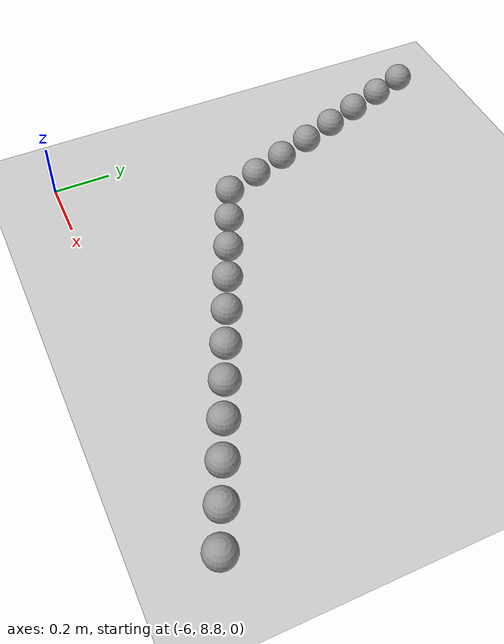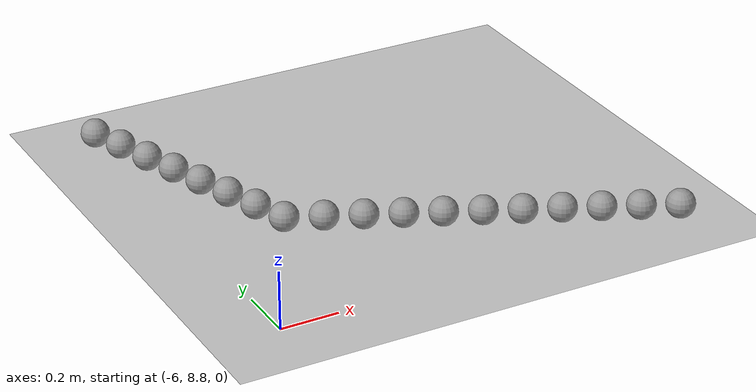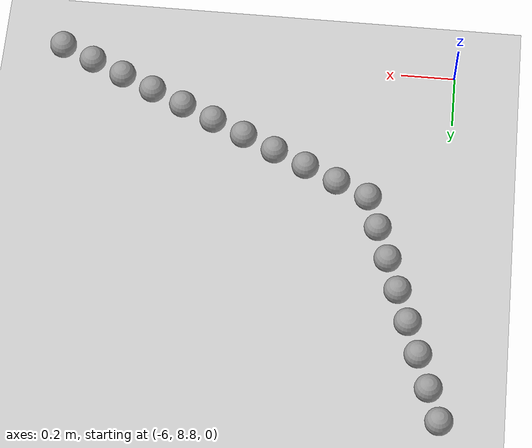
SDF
<sdf version="1.6">
 <world name="default">
  <model name="ground_plane">
   <static>1</static>
   <link name="link">
    <collision name="collision">
     <geometry><plane><normal>0 0 1</normal><size>100 100</size></plane></geometry>
     <surface><friction><ode><mu>100</mu><mu2>50</mu2></ode></friction></surface>
    </collision>
    <visual name="visual">
     <cast_shadows>0</cast_shadows>
     <geometry><plane><normal>0 0 1</normal><size>100 100</size></plane></geometry>
     <material>
      <script><uri>file://media/materials/scripts/gazebo.material</uri><name>Gazebo/Grey</name></script>
     </material>
    </visual>
   </link>
  </model>
  <model name="unit_sphere_0_60">
   <pose>-4.530000 8.810000 0.050000 0 -0 0</pose>
   <link name="link">
    <inertial>
     <mass>1</mass>
     <inertia><ixx>0.1</ixx><ixy>0</ixy><ixz>0</ixz><iyy>0.1</iyy><iyz>0</iyz><izz>0.1</izz></inertia>
    </inertial>
    <collision name="collision"><geometry><sphere><radius>0.050000</radius></sphere></geometry></collision>
    <visual name="visual">
     <geometry><sphere><radius>0.050000</radius></sphere></geometry>
     <material>
      <script><name>Gazebo/Grey</name><uri>file://media/materials/scripts/gazebo.material</uri></script>
     </material>
    </visual>
   </link>
  </model>
  <model name="unit_sphere_0_61">
   <pose>-4.648000 8.864000 0.050000 0 -0 0</pose>
   <link name="link">
    <inertial>
     <mass>1</mass>
     <inertia><ixx>0.1</ixx><ixy>0</ixy><ixz>0</ixz><iyy>0.1</iyy><iyz>0</iyz><izz>0.1</izz></inertia>
    </inertial>
    <collision name="collision"><geometry><sphere><radius>0.050000</radius></sphere></geometry></collision>
    <visual name="visual">
     <geometry><sphere><radius>0.050000</radius></sphere></geometry>
     <material>
      <script><name>Gazebo/Grey</name><uri>file://media/materials/scripts/gazebo.material</uri></script>
     </material>
    </visual>
   </link>
  </model>
  <model name="unit_sphere_0_62">
   <pose>-4.766000 8.918000 0.050000 0 -0 0</pose>
   <link name="link">
    <inertial>
     <mass>1</mass>
     <inertia><ixx>0.1</ixx><ixy>0</ixy><ixz>0</ixz><iyy>0.1</iyy><iyz>0</iyz><izz>0.1</izz></inertia>
    </inertial>
    <collision name="collision"><geometry><sphere><radius>0.050000</radius></sphere></geometry></collision>
    <visual name="visual">
     <geometry><sphere><radius>0.050000</radius></sphere></geometry>
     <material>
      <script><name>Gazebo/Grey</name><uri>file://media/materials/scripts/gazebo.material</uri></script>
     </material>
    </visual>
   </link>
  </model>
  <model name="unit_sphere_0_63">
   <pose>-4.884000 8.972000 0.050000 0 -0 0</pose>
   <link name="link">
    <inertial>
     <mass>1</mass>
     <inertia><ixx>0.1</ixx><ixy>0</ixy><ixz>0</ixz><iyy>0.1</iyy><iyz>0</iyz><izz>0.1</izz></inertia>
    </inertial>
    <collision name="collision"><geometry><sphere><radius>0.050000</radius></sphere></geometry></collision>
    <visual name="visual">
     <geometry><sphere><radius>0.050000</radius></sphere></geometry>
     <material>
      <script><name>Gazebo/Grey</name><uri>file://media/materials/scripts/gazebo.material</uri></script>
     </material>
    </visual>
   </link>
  </model>
  <model name="unit_sphere_0_64">
   <pose>-5.002000 9.026000 0.050000 0 -0 0</pose>
   <link name="link">
    <inertial>
     <mass>1</mass>
     <inertia><ixx>0.1</ixx><ixy>0</ixy><ixz>0</ixz><iyy>0.1</iyy><iyz>0</iyz><izz>0.1</izz></inertia>
    </inertial>
    <collision name="collision"><geometry><sphere><radius>0.050000</radius></sphere></geometry></collision>
    <visual name="visual">
     <geometry><sphere><radius>0.050000</radius></sphere></geometry>
     <material>
      <script><name>Gazebo/Grey</name><uri>file://media/materials/scripts/gazebo.material</uri></script>
     </material>
    </visual>
   </link>
  </model>
  <model name="unit_sphere_0_65">
   <pose>-5.120000 9.080000 0.050000 0 -0 0</pose>
   <link name="link">
    <inertial>
     <mass>1</mass>
     <inertia><ixx>0.1</ixx><ixy>0</ixy><ixz>0</ixz><iyy>0.1</iyy><iyz>0</iyz><izz>0.1</izz></inertia>
    </inertial>
    <collision name="collision"><geometry><sphere><radius>0.050000</radius></sphere></geometry></collision>
    <visual name="visual">
     <geometry><sphere><radius>0.050000</radius></sphere></geometry>
     <material>
      <script><name>Gazebo/Grey</name><uri>file://media/materials/scripts/gazebo.material</uri></script>
     </material>
    </visual>
   </link>
  </model>
  <model name="unit_sphere_0_66">
   <pose>-5.238000 9.134000 0.050000 0 -0 0</pose>
   <link name="link">
    <inertial>
     <mass>1</mass>
     <inertia><ixx>0.1</ixx><ixy>0</ixy><ixz>0</ixz><iyy>0.1</iyy><iyz>0</iyz><izz>0.1</izz></inertia>
    </inertial>
    <collision name="collision"><geometry><sphere><radius>0.050000</radius></sphere></geometry></collision>
    <visual name="visual">
     <geometry><sphere><radius>0.050000</radius></sphere></geometry>
     <material>
      <script><name>Gazebo/Grey</name><uri>file://media/materials/scripts/gazebo.material</uri></script>
     </material>
    </visual>
   </link>
  </model>
  <model name="unit_sphere_0_67">
   <pose>-5.356000 9.188000 0.050000 0 -0 0</pose>
   <link name="link">
    <inertial>
     <mass>1</mass>
     <inertia><ixx>0.1</ixx><ixy>0</ixy><ixz>0</ixz><iyy>0.1</iyy><iyz>0</iyz><izz>0.1</izz></inertia>
    </inertial>
    <collision name="collision"><geometry><sphere><radius>0.050000</radius></sphere></geometry></collision>
    <visual name="visual">
     <geometry><sphere><radius>0.050000</radius></sphere></geometry>
     <material>
      <script><name>Gazebo/Grey</name><uri>file://media/materials/scripts/gazebo.material</uri></script>
     </material>
    </visual>
   </link>
  </model>
  <model name="unit_sphere_0_68">
   <pose>-5.474000 9.242000 0.050000 0 -0 0</pose>
   <link name="link">
    <inertial>
     <mass>1</mass>
     <inertia><ixx>0.1</ixx><ixy>0</ixy><ixz>0</ixz><iyy>0.1</iyy><iyz>0</iyz><izz>0.1</izz></inertia>
    </inertial>
    <collision name="collision"><geometry><sphere><radius>0.050000</radius></sphere></geometry></collision>
    <visual name="visual">
     <geometry><sphere><radius>0.050000</radius></sphere></geometry>
     <material>
      <script><name>Gazebo/Grey</name><uri>file://media/materials/scripts/gazebo.material</uri></script>
     </material>
    </visual>
   </link>
  </model>
  <model name="unit_sphere_0_69">
   <pose>-5.592000 9.296000 0.050000 0 -0 0</pose>
   <link name="link">
    <inertial>
     <mass>1</mass>
     <inertia><ixx>0.1</ixx><ixy>0</ixy><ixz>0</ixz><iyy>0.1</iyy><iyz>0</iyz><izz>0.1</izz></inertia>
    </inertial>
    <collision name="collision"><geometry><sphere><radius>0.050000</radius></sphere></geometry></collision>
    <visual name="visual">
     <geometry><sphere><radius>0.050000</radius></sphere></geometry>
     <material>
      <script><name>Gazebo/Grey</name><uri>file://media/materials/scripts/gazebo.material</uri></script>
     </material>
    </visual>
   </link>
  </model>
  <model name="unit_sphere_0_70">
   <pose>-5.710000 9.350000 0.050000 0 -0 0</pose>
   <link name="link">
    <inertial>
     <mass>1</mass>
     <inertia><ixx>0.1</ixx><ixy>0</ixy><ixz>0</ixz><iyy>0.1</iyy><iyz>0</iyz><izz>0.1</izz></inertia>
    </inertial>
    <collision name="collision"><geometry><sphere><radius>0.050000</radius></sphere></geometry></collision>
    <visual name="visual">
     <geometry><sphere><radius>0.050000</radius></sphere></geometry>
     <material>
      <script><name>Gazebo/Grey</name><uri>file://media/materials/scripts/gazebo.material</uri></script>
     </material>
    </visual>
   </link>
  </model>
  <model name="unit_sphere_0_71">
   <pose>-5.753000 9.471000 0.050000 0 -0 0</pose>
   <link name="link">
    <inertial>
     <mass>1</mass>
     <inertia><ixx>0.1</ixx><ixy>0</ixy><ixz>0</ixz><iyy>0.1</iyy><iyz>0</iyz><izz>0.1</izz></inertia>
    </inertial>
    <collision name="collision"><geometry><sphere><radius>0.050000</radius></sphere></geometry></collision>
    <visual name="visual">
     <geometry><sphere><radius>0.050000</radius></sphere></geometry>
     <material>
      <script><name>Gazebo/Grey</name><uri>file://media/materials/scripts/gazebo.material</uri></script>
     </material>
    </visual>
   </link>
  </model>
  <model name="unit_sphere_0_72">
   <pose>-5.796000 9.592000 0.050000 0 -0 0</pose>
   <link name="link">
    <inertial>
     <mass>1</mass>
     <inertia><ixx>0.1</ixx><ixy>0</ixy><ixz>0</ixz><iyy>0.1</iyy><iyz>0</iyz><izz>0.1</izz></inertia>
    </inertial>
    <collision name="collision"><geometry><sphere><radius>0.050000</radius></sphere></geometry></collision>
    <visual name="visual">
     <geometry><sphere><radius>0.050000</radius></sphere></geometry>
     <material>
      <script><name>Gazebo/Grey</name><uri>file://media/materials/scripts/gazebo.material</uri></script>
     </material>
    </visual>
   </link>
  </model>
  <model name="unit_sphere_0_73">
   <pose>-5.839000 9.713000 0.050000 0 -0 0</pose>
   <link name="link">
    <inertial>
     <mass>1</mass>
     <inertia><ixx>0.1</ixx><ixy>0</ixy><ixz>0</ixz><iyy>0.1</iyy><iyz>0</iyz><izz>0.1</izz></inertia>
    </inertial>
    <collision name="collision"><geometry><sphere><radius>0.050000</radius></sphere></geometry></collision>
    <visual name="visual">
     <geometry><sphere><radius>0.050000</radius></sphere></geometry>
     <material>
      <script><name>Gazebo/Grey</name><uri>file://media/materials/scripts/gazebo.material</uri></script>
     </material>
    </visual>
   </link>
  </model>
  <model name="unit_sphere_0_74">
   <pose>-5.882000 9.834000 0.050000 0 -0 0</pose>
   <link name="link">
    <inertial>
     <mass>1</mass>
     <inertia><ixx>0.1</ixx><ixy>0</ixy><ixz>0</ixz><iyy>0.1</iyy><iyz>0</iyz><izz>0.1</izz></inertia>
    </inertial>
    <collision name="collision"><geometry><sphere><radius>0.050000</radius></sphere></geometry></collision>
    <visual name="visual">
     <geometry><sphere><radius>0.050000</radius></sphere></geometry>
     <material>
      <script><name>Gazebo/Grey</name><uri>file://media/materials/scripts/gazebo.material</uri></script>
     </material>
    </visual>
   </link>
  </model>
  <model name="unit_sphere_0_75">
   <pose>-5.925000 9.955000 0.050000 0 -0 0</pose>
   <link name="link">
    <inertial>
     <mass>1</mass>
     <inertia><ixx>0.1</ixx><ixy>0</ixy><ixz>0</ixz><iyy>0.1</iyy><iyz>0</iyz><izz>0.1</izz></inertia>
    </inertial>
    <collision name="collision"><geometry><sphere><radius>0.050000</radius></sphere></geometry></collision>
    <visual name="visual">
     <geometry><sphere><radius>0.050000</radius></sphere></geometry>
     <material>
      <script><name>Gazebo/Grey</name><uri>file://media/materials/scripts/gazebo.material</uri></script>
     </material>
    </visual>
   </link>
  </model>
  <model name="unit_sphere_0_76">
   <pose>-5.968000 10.080000 0.050000 0 -0 0</pose>
   <link name="link">
    <inertial>
     <mass>1</mass>
     <inertia><ixx>0.1</ixx><ixy>0</ixy><ixz>0</ixz><iyy>0.1</iyy><iyz>0</iyz><izz>0.1</izz></inertia>
    </inertial>
    <collision name="collision"><geometry><sphere><radius>0.050000</radius></sphere></geometry></collision>
    <visual name="visual">
     <geometry><sphere><radius>0.050000</radius></sphere></geometry>
     <material>
      <script><name>Gazebo/Grey</name><uri>file://media/materials/scripts/gazebo.material</uri></script>
     </material>
    </visual>
   </link>
  </model>
  <model name="unit_sphere_0_77">
   <pose>-6.011000 10.200000 0.050000 0 -0 0</pose>
   <link name="link">
    <inertial>
     <mass>1</mass>
     <inertia><ixx>0.1</ixx><ixy>0</ixy><ixz>0</ixz><iyy>0.1</iyy><iyz>0</iyz><izz>0.1</izz></inertia>
    </inertial>
    <collision name="collision"><geometry><sphere><radius>0.050000</radius></sphere></geometry></collision>
    <visual name="visual">
     <geometry><sphere><radius>0.050000</radius></sphere></geometry>
     <material>
      <script><name>Gazebo/Grey</name><uri>file://media/materials/scripts/gazebo.material</uri></script>
     </material>
    </visual>
   </link>
  </model>
 </world>
</sdf>
